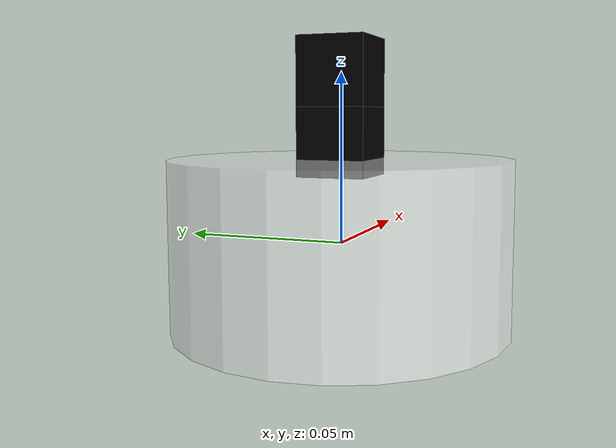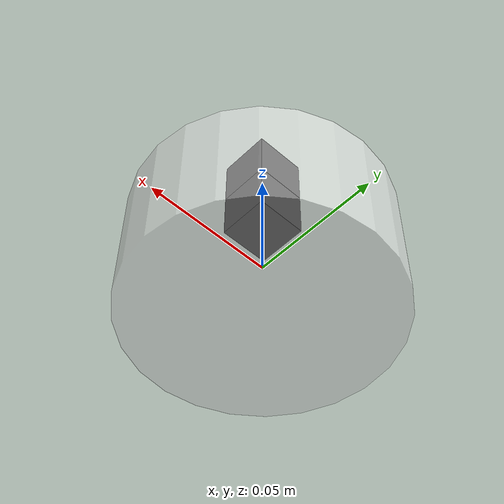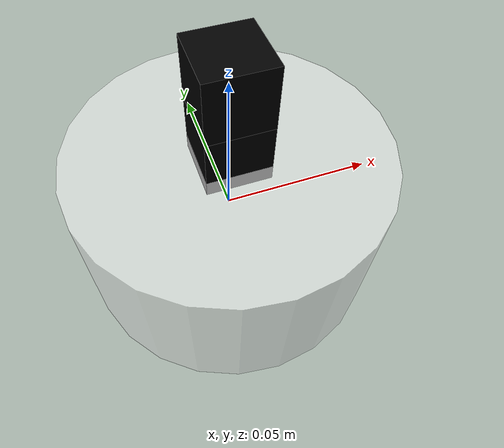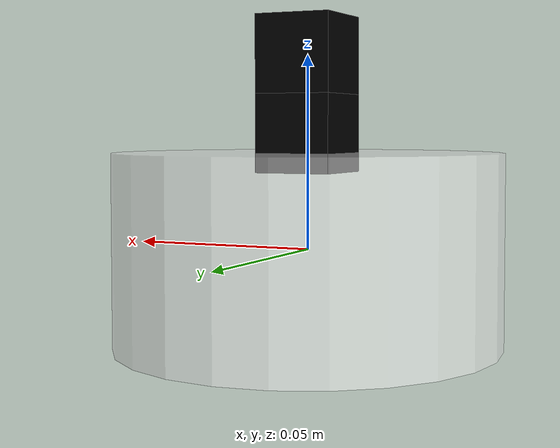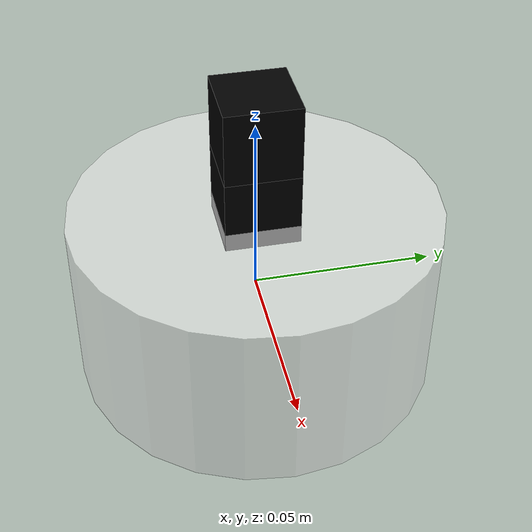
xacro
<?xml version="1.0"?>
<robot xmlns:xacro="http://www.ros.org/wiki/xacro" name="robot">
    <xacro:macro name="base_link" params = "length radius">
        <!-- 机器人模型 -->
        <link name="base_link">
            <visual>
                <origin xyz="0.0 0.0 0.0" rpy="0.0 0.0 0.0"/>
                <geometry>
                    <cylinder radius="${radius}" length="${length}"/>
                </geometry>
                <material name="white">
                    <color rgba="1.0 1.0 1.0 0.5"/>
                </material>
            </visual>
        </link>
    </xacro:macro>
    <xacro:macro name="imu_link" params = "imu_name xyz_offset">
        <link name="${imu_name}_link">
            <visual>
                <origin xyz="0.0 0.0 0.0" rpy="0.0 0.0 0.0"/>
                <geometry>
                    <box size="0.02 0.02 0.02"/>
                </geometry>
                <material name="black">
                    <color rgba="0.0 0.0 0.0 1.0"/>
                </material>
            </visual>
        </link>
        <joint name="base_link_to_${imu_name}" type="fixed">
            <parent link="base_link"/>
            <child link="${imu_name}_link"/>
            <origin xyz="${xyz_offset}" rpy="0.0 0.0 0.0"/>
        </joint>
    </xacro:macro>
    <xacro:base_link length="0.05" radius="0.05"/>
    <xacro:imu_link imu_name="imu" xyz_offset="0.0 0.0 0.03"/>
    <xacro:imu_link imu_name="imu_down" xyz_offset="0.0 0.0 0.05"/>
</robot>
